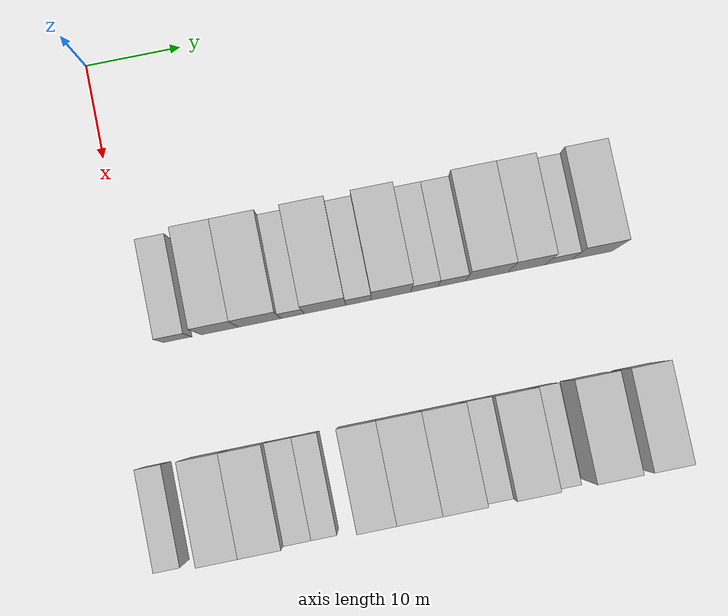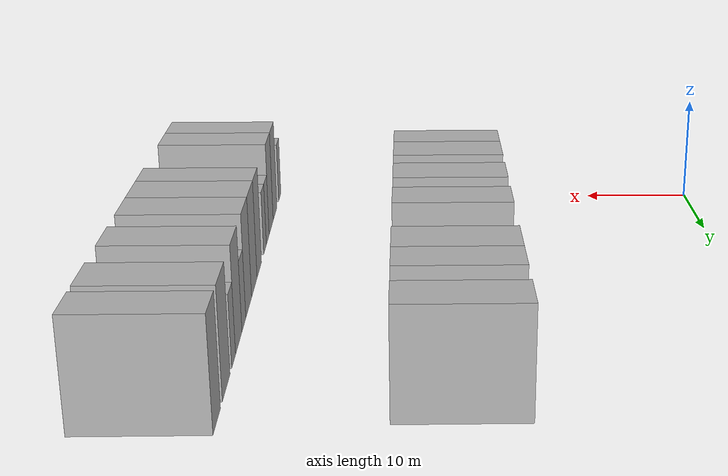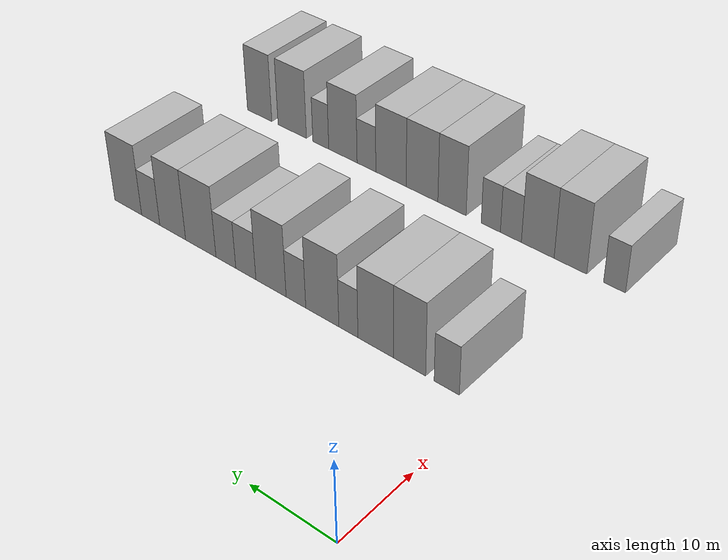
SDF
<sdf version="1.6">
 <world name="default">
  <model name="building_53">
   <static>1</static>
   <pose>25.0000 4.0832 0 0.000000 0.000000 0.000000</pose>
   <link name="link">
    <pose>0 0 3.00 0 0 0</pose>
    <collision name="collision"><geometry><box><size>10.0000 2.9375 6.0000</size></box></geometry></collision>
    <visual name="visual">
     <cast_shadows>0</cast_shadows>
     <geometry><box><size>10.0000 2.9375 6.0000</size></box></geometry>
     <material>
      <script>
       <uri>model://HANNAS_wall/materials/scripts</uri>
       <uri>model://HANNAS_wall/materials/textures</uri>
       <name>vrc/HANNAS_wall</name>
      </script>
     </material>
    </visual>
   </link>
  </model>
  <model name="building_54">
   <static>1</static>
   <pose>25.0000 8.4924 0 0.000000 0.000000 0.000000</pose>
   <link name="link">
    <pose>0 0 4.50 0 0 0</pose>
    <collision name="collision"><geometry><box><size>10.0000 3.8807 9.0000</size></box></geometry></collision>
    <visual name="visual">
     <cast_shadows>0</cast_shadows>
     <geometry><box><size>10.0000 3.8807 9.0000</size></box></geometry>
     <material>
      <script>
       <uri>model://HANNAS_wall/materials/scripts</uri>
       <uri>model://HANNAS_wall/materials/textures</uri>
       <name>vrc/HANNAS_wall</name>
      </script>
     </material>
    </visual>
   </link>
  </model>
  <model name="building_55">
   <static>1</static>
   <pose>25.0000 12.6406 0 0.000000 0.000000 0.000000</pose>
   <link name="link">
    <pose>0 0 4.50 0 0 0</pose>
    <collision name="collision"><geometry><box><size>10.0000 4.4157 9.0000</size></box></geometry></collision>
    <visual name="visual">
     <cast_shadows>0</cast_shadows>
     <geometry><box><size>10.0000 4.4157 9.0000</size></box></geometry>
     <material>
      <script>
       <uri>model://HANNAS_wall/materials/scripts</uri>
       <uri>model://HANNAS_wall/materials/textures</uri>
       <name>vrc/HANNAS_wall</name>
      </script>
     </material>
    </visual>
   </link>
  </model>
  <model name="building_56">
   <static>1</static>
   <pose>25.0000 16.0649 0 0.000000 0.000000 0.000000</pose>
   <link name="link">
    <pose>0 0 3.00 0 0 0</pose>
    <collision name="collision"><geometry><box><size>10.0000 2.4328 6.0000</size></box></geometry></collision>
    <visual name="visual">
     <cast_shadows>0</cast_shadows>
     <geometry><box><size>10.0000 2.4328 6.0000</size></box></geometry>
     <material>
      <script>
       <uri>model://HANNAS_wall/materials/scripts</uri>
       <uri>model://HANNAS_wall/materials/textures</uri>
       <name>vrc/HANNAS_wall</name>
      </script>
     </material>
    </visual>
   </link>
  </model>
  <model name="building_57">
   <static>1</static>
   <pose>25.0000 19.4465 0 0.000000 0.000000 0.000000</pose>
   <link name="link">
    <pose>0 0 4.50 0 0 0</pose>
    <collision name="collision"><geometry><box><size>10.0000 4.3304 9.0000</size></box></geometry></collision>
    <visual name="visual">
     <cast_shadows>0</cast_shadows>
     <geometry><box><size>10.0000 4.3304 9.0000</size></box></geometry>
     <material>
      <script>
       <uri>model://HANNAS_wall/materials/scripts</uri>
       <uri>model://HANNAS_wall/materials/textures</uri>
       <name>vrc/HANNAS_wall</name>
      </script>
     </material>
    </visual>
   </link>
  </model>
  <model name="building_58">
   <static>1</static>
   <pose>25.0000 22.9287 0 0.000000 0.000000 0.000000</pose>
   <link name="link">
    <pose>0 0 3.00 0 0 0</pose>
    <collision name="collision"><geometry><box><size>10.0000 2.6340 6.0000</size></box></geometry></collision>
    <visual name="visual">
     <cast_shadows>0</cast_shadows>
     <geometry><box><size>10.0000 2.6340 6.0000</size></box></geometry>
     <material>
      <script>
       <uri>model://HANNAS_wall/materials/scripts</uri>
       <uri>model://HANNAS_wall/materials/textures</uri>
       <name>vrc/HANNAS_wall</name>
      </script>
     </material>
    </visual>
   </link>
  </model>
  <model name="building_59">
   <static>1</static>
   <pose>25.0000 26.3239 0 0.000000 0.000000 0.000000</pose>
   <link name="link">
    <pose>0 0 4.50 0 0 0</pose>
    <collision name="collision"><geometry><box><size>10.0000 4.1565 9.0000</size></box></geometry></collision>
    <visual name="visual">
     <cast_shadows>0</cast_shadows>
     <geometry><box><size>10.0000 4.1565 9.0000</size></box></geometry>
     <material>
      <script>
       <uri>model://HANNAS_wall/materials/scripts</uri>
       <uri>model://HANNAS_wall/materials/textures</uri>
       <name>vrc/HANNAS_wall</name>
      </script>
     </material>
    </visual>
   </link>
  </model>
  <model name="building_60">
   <static>1</static>
   <pose>25.0000 29.8214 0 0.000000 0.000000 0.000000</pose>
   <link name="link">
    <pose>0 0 3.00 0 0 0</pose>
    <collision name="collision"><geometry><box><size>10.0000 2.8384 6.0000</size></box></geometry></collision>
    <visual name="visual">
     <cast_shadows>0</cast_shadows>
     <geometry><box><size>10.0000 2.8384 6.0000</size></box></geometry>
     <material>
      <script>
       <uri>model://HANNAS_wall/materials/scripts</uri>
       <uri>model://HANNAS_wall/materials/textures</uri>
       <name>vrc/HANNAS_wall</name>
      </script>
     </material>
    </visual>
   </link>
  </model>
  <model name="building_61">
   <static>1</static>
   <pose>25.0000 32.6655 0 0.000000 0.000000 0.000000</pose>
   <link name="link">
    <pose>0 0 3.00 0 0 0</pose>
    <collision name="collision"><geometry><box><size>10.0000 2.8499 6.0000</size></box></geometry></collision>
    <visual name="visual">
     <cast_shadows>0</cast_shadows>
     <geometry><box><size>10.0000 2.8499 6.0000</size></box></geometry>
     <material>
      <script>
       <uri>model://HANNAS_wall/materials/scripts</uri>
       <uri>model://HANNAS_wall/materials/textures</uri>
       <name>vrc/HANNAS_wall</name>
      </script>
     </material>
    </visual>
   </link>
  </model>
  <model name="building_62">
   <static>1</static>
   <pose>25.0000 36.3310 0 0.000000 0.000000 0.000000</pose>
   <link name="link">
    <pose>0 0 4.50 0 0 0</pose>
    <collision name="collision"><geometry><box><size>10.0000 4.4812 9.0000</size></box></geometry></collision>
    <visual name="visual">
     <cast_shadows>0</cast_shadows>
     <geometry><box><size>10.0000 4.4812 9.0000</size></box></geometry>
     <material>
      <script>
       <uri>model://HANNAS_wall/materials/scripts</uri>
       <uri>model://HANNAS_wall/materials/textures</uri>
       <name>vrc/HANNAS_wall</name>
      </script>
     </material>
    </visual>
   </link>
  </model>
  <model name="building_63">
   <static>1</static>
   <pose>25.0000 40.5339 0 0.000000 0.000000 0.000000</pose>
   <link name="link">
    <pose>0 0 4.50 0 0 0</pose>
    <collision name="collision"><geometry><box><size>10.0000 3.9246 9.0000</size></box></geometry></collision>
    <visual name="visual">
     <cast_shadows>0</cast_shadows>
     <geometry><box><size>10.0000 3.9246 9.0000</size></box></geometry>
     <material>
      <script>
       <uri>model://HANNAS_wall/materials/scripts</uri>
       <uri>model://HANNAS_wall/materials/textures</uri>
       <name>vrc/HANNAS_wall</name>
      </script>
     </material>
    </visual>
   </link>
  </model>
  <model name="building_64">
   <static>1</static>
   <pose>25.0000 43.9046 0 0.000000 0.000000 0.000000</pose>
   <link name="link">
    <pose>0 0 3.00 0 0 0</pose>
    <collision name="collision"><geometry><box><size>10.0000 2.8168 6.0000</size></box></geometry></collision>
    <visual name="visual">
     <cast_shadows>0</cast_shadows>
     <geometry><box><size>10.0000 2.8168 6.0000</size></box></geometry>
     <material>
      <script>
       <uri>model://HANNAS_wall/materials/scripts</uri>
       <uri>model://HANNAS_wall/materials/textures</uri>
       <name>vrc/HANNAS_wall</name>
      </script>
     </material>
    </visual>
   </link>
  </model>
  <model name="building_65">
   <static>1</static>
   <pose>25.0000 47.4456 0 0.000000 0.000000 0.000000</pose>
   <link name="link">
    <pose>0 0 4.50 0 0 0</pose>
    <collision name="collision"><geometry><box><size>10.0000 4.2652 9.0000</size></box></geometry></collision>
    <visual name="visual">
     <cast_shadows>0</cast_shadows>
     <geometry><box><size>10.0000 4.2652 9.0000</size></box></geometry>
     <material>
      <script>
       <uri>model://HANNAS_wall/materials/scripts</uri>
       <uri>model://HANNAS_wall/materials/textures</uri>
       <name>vrc/HANNAS_wall</name>
      </script>
     </material>
    </visual>
   </link>
  </model>
  <model name="building_160">
   <static>1</static>
   <pose>47.0000 -0.2160 0 0.000000 0.000000 0.000000</pose>
   <link name="link">
    <pose>0 0 3.00 0 0 0</pose>
    <collision name="collision"><geometry><box><size>10.0000 2.5899 6.0000</size></box></geometry></collision>
    <visual name="visual">
     <cast_shadows>0</cast_shadows>
     <geometry><box><size>10.0000 2.5899 6.0000</size></box></geometry>
     <material>
      <script>
       <uri>model://HANNAS_wall/materials/scripts</uri>
       <uri>model://HANNAS_wall/materials/textures</uri>
       <name>vrc/HANNAS_wall</name>
      </script>
     </material>
    </visual>
   </link>
  </model>
  <model name="building_161">
   <static>1</static>
   <pose>47.0000 5.0765 0 0.000000 0.000000 0.000000</pose>
   <link name="link">
    <pose>0 0 4.50 0 0 0</pose>
    <collision name="collision"><geometry><box><size>10.0000 3.9951 9.0000</size></box></geometry></collision>
    <visual name="visual">
     <cast_shadows>0</cast_shadows>
     <geometry><box><size>10.0000 3.9951 9.0000</size></box></geometry>
     <material>
      <script>
       <uri>model://HANNAS_wall/materials/scripts</uri>
       <uri>model://HANNAS_wall/materials/textures</uri>
       <name>vrc/HANNAS_wall</name>
      </script>
     </material>
    </visual>
   </link>
  </model>
  <model name="building_162">
   <static>1</static>
   <pose>47.0000 9.1333 0 0.000000 0.000000 0.000000</pose>
   <link name="link">
    <pose>0 0 4.50 0 0 0</pose>
    <collision name="collision"><geometry><box><size>10.0000 4.1185 9.0000</size></box></geometry></collision>
    <visual name="visual">
     <cast_shadows>0</cast_shadows>
     <geometry><box><size>10.0000 4.1185 9.0000</size></box></geometry>
     <material>
      <script>
       <uri>model://HANNAS_wall/materials/scripts</uri>
       <uri>model://HANNAS_wall/materials/textures</uri>
       <name>vrc/HANNAS_wall</name>
      </script>
     </material>
    </visual>
   </link>
  </model>
  <model name="building_163">
   <static>1</static>
   <pose>47.0000 12.5438 0 0.000000 0.000000 0.000000</pose>
   <link name="link">
    <pose>0 0 3.00 0 0 0</pose>
    <collision name="collision"><geometry><box><size>10.0000 2.7026 6.0000</size></box></geometry></collision>
    <visual name="visual">
     <cast_shadows>0</cast_shadows>
     <geometry><box><size>10.0000 2.7026 6.0000</size></box></geometry>
     <material>
      <script>
       <uri>model://HANNAS_wall/materials/scripts</uri>
       <uri>model://HANNAS_wall/materials/textures</uri>
       <name>vrc/HANNAS_wall</name>
      </script>
     </material>
    </visual>
   </link>
  </model>
  <model name="building_164">
   <static>1</static>
   <pose>47.0000 15.1546 0 0.000000 0.000000 0.000000</pose>
   <link name="link">
    <pose>0 0 3.00 0 0 0</pose>
    <collision name="collision"><geometry><box><size>10.0000 2.5189 6.0000</size></box></geometry></collision>
    <visual name="visual">
     <cast_shadows>0</cast_shadows>
     <geometry><box><size>10.0000 2.5189 6.0000</size></box></geometry>
     <material>
      <script>
       <uri>model://HANNAS_wall/materials/scripts</uri>
       <uri>model://HANNAS_wall/materials/textures</uri>
       <name>vrc/HANNAS_wall</name>
      </script>
     </material>
    </visual>
   </link>
  </model>
  <model name="building_165">
   <static>1</static>
   <pose>47.0000 20.3296 0 0.000000 0.000000 0.000000</pose>
   <link name="link">
    <pose>0 0 4.50 0 0 0</pose>
    <collision name="collision"><geometry><box><size>10.0000 3.8311 9.0000</size></box></geometry></collision>
    <visual name="visual">
     <cast_shadows>0</cast_shadows>
     <geometry><box><size>10.0000 3.8311 9.0000</size></box></geometry>
     <material>
      <script>
       <uri>model://HANNAS_wall/materials/scripts</uri>
       <uri>model://HANNAS_wall/materials/textures</uri>
       <name>vrc/HANNAS_wall</name>
      </script>
     </material>
    </visual>
   </link>
  </model>
  <model name="building_166">
   <static>1</static>
   <pose>47.0000 24.4531 0 0.000000 0.000000 0.000000</pose>
   <link name="link">
    <pose>0 0 4.50 0 0 0</pose>
    <collision name="collision"><geometry><box><size>10.0000 4.4158 9.0000</size></box></geometry></collision>
    <visual name="visual">
     <cast_shadows>0</cast_shadows>
     <geometry><box><size>10.0000 4.4158 9.0000</size></box></geometry>
     <material>
      <script>
       <uri>model://HANNAS_wall/materials/scripts</uri>
       <uri>model://HANNAS_wall/materials/textures</uri>
       <name>vrc/HANNAS_wall</name>
      </script>
     </material>
    </visual>
   </link>
  </model>
  <model name="building_167">
   <static>1</static>
   <pose>47.0000 28.8377 0 0.000000 0.000000 0.000000</pose>
   <link name="link">
    <pose>0 0 4.50 0 0 0</pose>
    <collision name="collision"><geometry><box><size>10.0000 4.3535 9.0000</size></box></geometry></collision>
    <visual name="visual">
     <cast_shadows>0</cast_shadows>
     <geometry><box><size>10.0000 4.3535 9.0000</size></box></geometry>
     <material>
      <script>
       <uri>model://HANNAS_wall/materials/scripts</uri>
       <uri>model://HANNAS_wall/materials/textures</uri>
       <name>vrc/HANNAS_wall</name>
      </script>
     </material>
    </visual>
   </link>
  </model>
  <model name="building_168">
   <static>1</static>
   <pose>47.0000 32.3892 0 0.000000 0.000000 0.000000</pose>
   <link name="link">
    <pose>0 0 3.00 0 0 0</pose>
    <collision name="collision"><geometry><box><size>10.0000 2.7495 6.0000</size></box></geometry></collision>
    <visual name="visual">
     <cast_shadows>0</cast_shadows>
     <geometry><box><size>10.0000 2.7495 6.0000</size></box></geometry>
     <material>
      <script>
       <uri>model://HANNAS_wall/materials/scripts</uri>
       <uri>model://HANNAS_wall/materials/textures</uri>
       <name>vrc/HANNAS_wall</name>
      </script>
     </material>
    </visual>
   </link>
  </model>
  <model name="building_169">
   <static>1</static>
   <pose>47.0000 35.8910 0 0.000000 0.000000 0.000000</pose>
   <link name="link">
    <pose>0 0 4.50 0 0 0</pose>
    <collision name="collision"><geometry><box><size>10.0000 4.2542 9.0000</size></box></geometry></collision>
    <visual name="visual">
     <cast_shadows>0</cast_shadows>
     <geometry><box><size>10.0000 4.2542 9.0000</size></box></geometry>
     <material>
      <script>
       <uri>model://HANNAS_wall/materials/scripts</uri>
       <uri>model://HANNAS_wall/materials/textures</uri>
       <name>vrc/HANNAS_wall</name>
      </script>
     </material>
    </visual>
   </link>
  </model>
  <model name="building_170">
   <static>1</static>
   <pose>47.0000 39.2354 0 0.000000 0.000000 0.000000</pose>
   <link name="link">
    <pose>0 0 3.00 0 0 0</pose>
    <collision name="collision"><geometry><box><size>10.0000 2.4346 6.0000</size></box></geometry></collision>
    <visual name="visual">
     <cast_shadows>0</cast_shadows>
     <geometry><box><size>10.0000 2.4346 6.0000</size></box></geometry>
     <material>
      <script>
       <uri>model://HANNAS_wall/materials/scripts</uri>
       <uri>model://HANNAS_wall/materials/textures</uri>
       <name>vrc/HANNAS_wall</name>
      </script>
     </material>
    </visual>
   </link>
  </model>
  <model name="building_171">
   <static>1</static>
   <pose>47.0000 43.6857 0 0.000000 0.000000 0.000000</pose>
   <link name="link">
    <pose>0 0 4.50 0 0 0</pose>
    <collision name="collision"><geometry><box><size>10.0000 4.4659 9.0000</size></box></geometry></collision>
    <visual name="visual">
     <cast_shadows>0</cast_shadows>
     <geometry><box><size>10.0000 4.4659 9.0000</size></box></geometry>
     <material>
      <script>
       <uri>model://HANNAS_wall/materials/scripts</uri>
       <uri>model://HANNAS_wall/materials/textures</uri>
       <name>vrc/HANNAS_wall</name>
      </script>
     </material>
    </visual>
   </link>
  </model>
  <model name="building_172">
   <static>1</static>
   <pose>47.0000 48.8945 0 0.000000 0.000000 0.000000</pose>
   <link name="link">
    <pose>0 0 4.50 0 0 0</pose>
    <collision name="collision"><geometry><box><size>10.0000 3.9516 9.0000</size></box></geometry></collision>
    <visual name="visual">
     <cast_shadows>0</cast_shadows>
     <geometry><box><size>10.0000 3.9516 9.0000</size></box></geometry>
     <material>
      <script>
       <uri>model://HANNAS_wall/materials/scripts</uri>
       <uri>model://HANNAS_wall/materials/textures</uri>
       <name>vrc/HANNAS_wall</name>
      </script>
     </material>
    </visual>
   </link>
  </model>
 </world>
</sdf>
